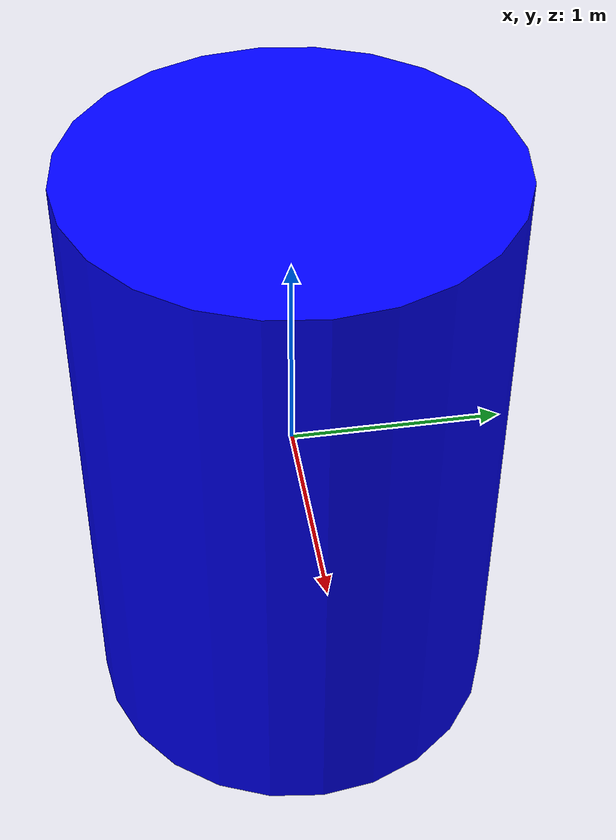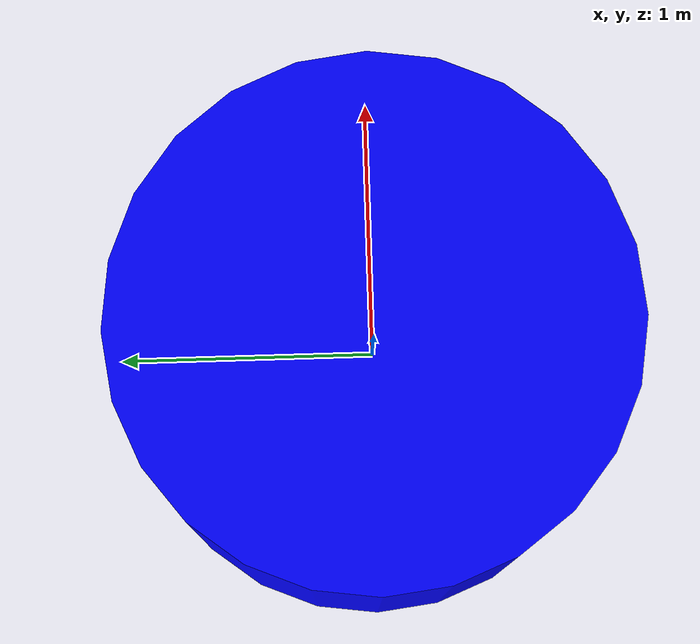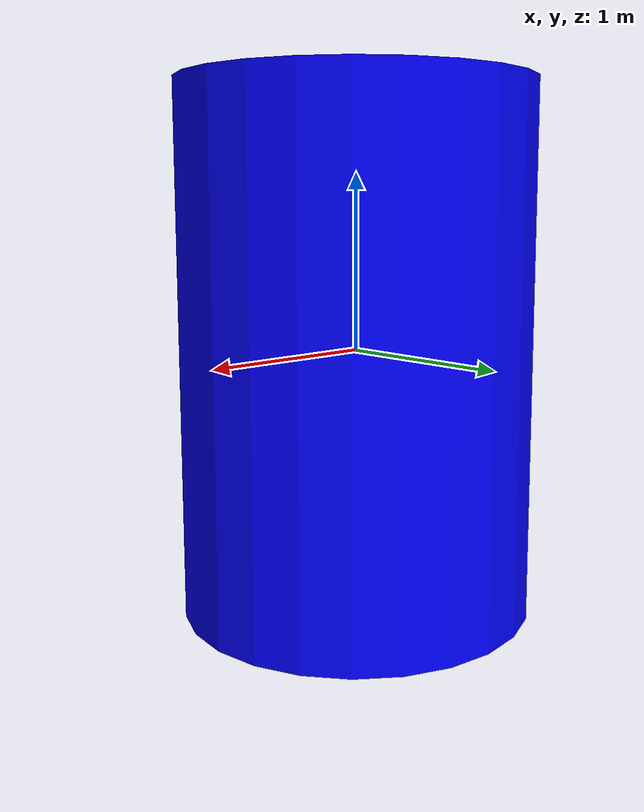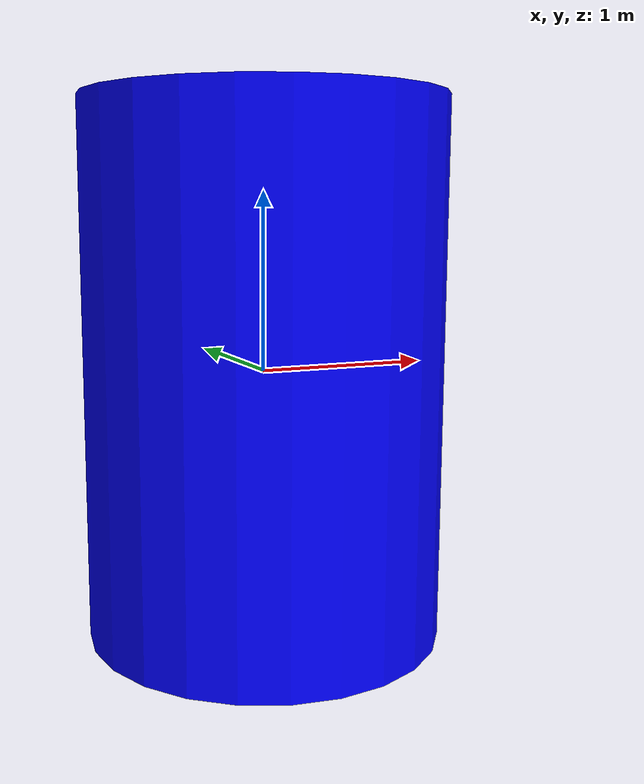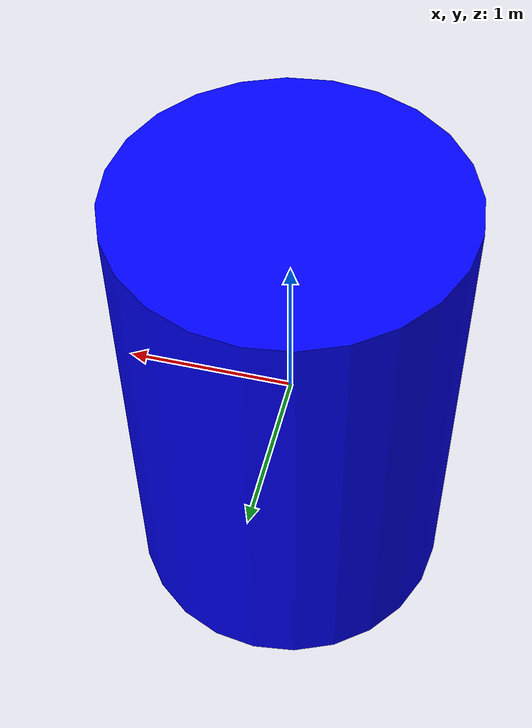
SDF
<?xml version="1.0" ?>
<sdf version="1.6">
  <model name="simple_robot">
    <static>false</static>

    <!-- Submarine Body -->
    <link name="submarine_body">
      <visual name="visual">
        <geometry>
          <cylinder>
            <radius>1.0</radius>
            <length>3.0</length>
          </cylinder>
        </geometry>
        <material>
          <ambient>0.0 0.0 1.0 1.0</ambient>
          <diffuse>0.0 0.0 1.0 1.0</diffuse>
          <specular>0.5 0.5 0.5 1.0</specular>
        </material>
      </visual>

      <collision name="collision">
        <geometry>
          <cylinder>
            <radius>1.0</radius>
            <length>3.0</length>
          </cylinder>
        </geometry>
        <surface>
          <friction>
            <ode>
              <mu>1.0</mu>
              <mu2>1.0</mu2>
            </ode>
          </friction>
        </surface>
      </collision>

      <inertial>
        <mass>20.0</mass>
        <inertia>
          <ixx>1.0</ixx>
          <iyy>1.0</iyy>
          <izz>1.0</izz>
        </inertia>
      </inertial>

      <!-- Front Camera -->
      <sensor name="front_camera" type="camera">
        <pose>1 0 0.5 0 0 0</pose>
        <update_rate>30</update_rate>
        <always_on>true</always_on>
        <camera>
          <horizontal_fov>1.57</horizontal_fov>
          <image>
            <width>640</width>
            <height>480</height>
            <format>R8G8B8</format>
          </image>
          <clip>
            <near>0.1</near>
            <far>50</far>
          </clip>
        </camera>
        <plugin name="front_camera_plugin" filename="libgazebo_ros_camera.so">
          <ros>
            <namespace>/simple_robot</namespace>
            <remapping>image_raw:=front_camera/image_raw</remapping>
          </ros>
        </plugin>
      </sensor>

      <!-- Downward Camera -->
      <sensor name="down_camera" type="camera">
        <pose>0 0 -0.5 0 1.57 0</pose>
        <update_rate>30</update_rate>
        <always_on>true</always_on>
        <camera>
          <horizontal_fov>1.57</horizontal_fov>
          <image>
            <width>640</width>
            <height>480</height>
            <format>R8G8B8</format>
          </image>
          <clip>
            <near>0.1</near>
            <far>50</far>
          </clip>
        </camera>
        <plugin name="down_camera_plugin" filename="libgazebo_ros_camera.so">
          <ros>
            <namespace>/simple_robot</namespace>
            <remapping>image_raw:=down_camera/image_raw</remapping>
          </ros>
        </plugin>
      </sensor>

      <!-- Sonar Sensor -->
      <sensor name="sonar_sensor" type="ray">
        <pose>0 0 -0.3 0 0 0</pose>
        <update_rate>10</update_rate>
        <always_on>true</always_on>
        <ray>
          <scan>
            <horizontal>
              <samples>180</samples>
              <resolution>1</resolution>
              <min_angle>-1.57</min_angle>
              <max_angle>1.57</max_angle>
            </horizontal>
          </scan>
          <range>
            <min>0.2</min>
            <max>50.0</max>
            <resolution>0.01</resolution>
          </range>
        </ray>
        <plugin name="sonar_plugin" filename="libgazebo_ros_ray_sensor.so">
          <ros>
            <namespace>/simple_robot</namespace>
            <remapping>scan:=sonar/scan</remapping>
          </ros>
        </plugin>
      </sensor>

      <!-- IMU Sensor -->
      <sensor name="imu_sensor" type="imu">
        <pose>0 0 0.5 0 0 0</pose>
        <update_rate>50</update_rate>
        <always_on>true</always_on>
        <plugin name="imu_plugin" filename="libgazebo_ros_imu_sensor.so">
          <ros>
            <namespace>/simple_robot</namespace>
            <remapping>imu/data:=imu/data</remapping>
          </ros>
        </plugin>
      </sensor>
    </link>

    <!-- Thruster Plugin -->
    <plugin name="thruster_plugin" filename="libgazebo_ros_thruster.so">
      <ros>
        <namespace>/simple_robot</namespace>
        <remapping>thruster_cmd:=cmd_vel</remapping>
      </ros>
      <link_name>submarine_body</link_name>
      <thruster>
        <position>0 0 -0.5</position>
        <direction>1 0 0</direction>
        <force>10</force>
      </thruster>
      <thruster>
        <position>0 0 0</position>
        <direction>0 0 1</direction>
        <force>30</force>
      </thruster>
      <thruster>
        <position>0.5 0 0</position>
        <direction>0 1 0</direction>
        <force>20</force>
      </thruster>
    </plugin>

    <!-- Velocity Controller -->
    <plugin name="velocity_controller" filename="libgazebo_ros_velocity_controller.so">
      <ros>
        <namespace>/simple_robot</namespace>
        <remapping>
          <remap from="cmd_vel" to="cmd_vel"/>
        </remapping>
      </ros>
      <robotNamespace>simple_robot</robotNamespace>
      <commandTopic>cmd_vel</commandTopic>
      <linkName>submarine_body</linkName>
    </plugin>

  </model>
</sdf>
